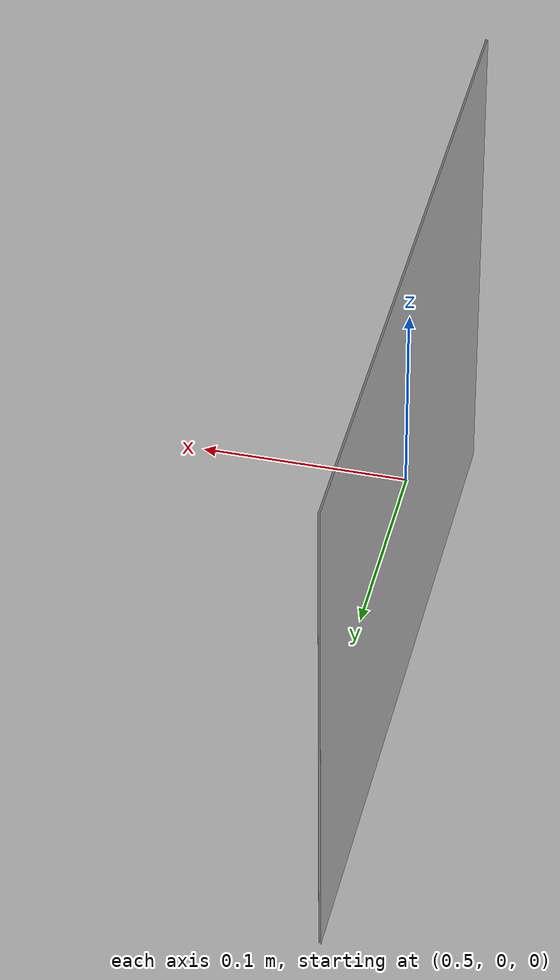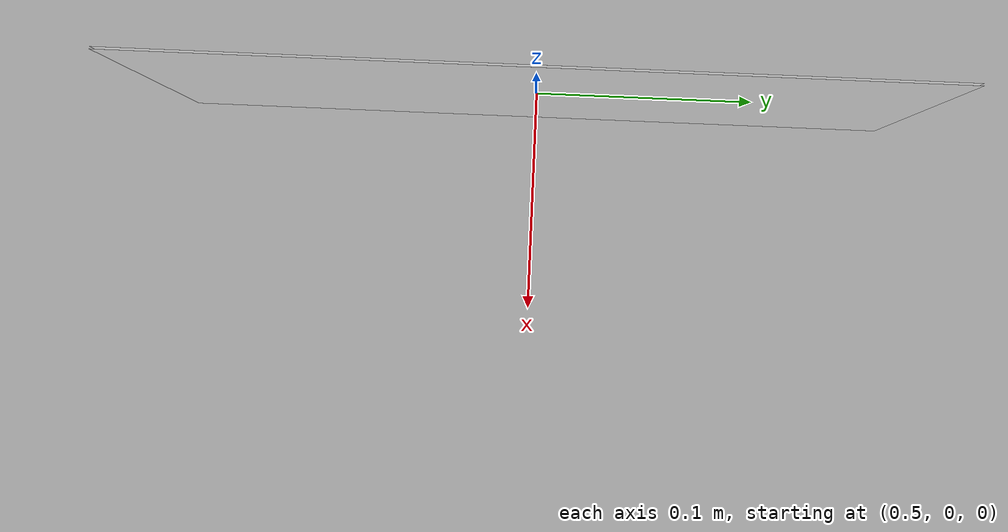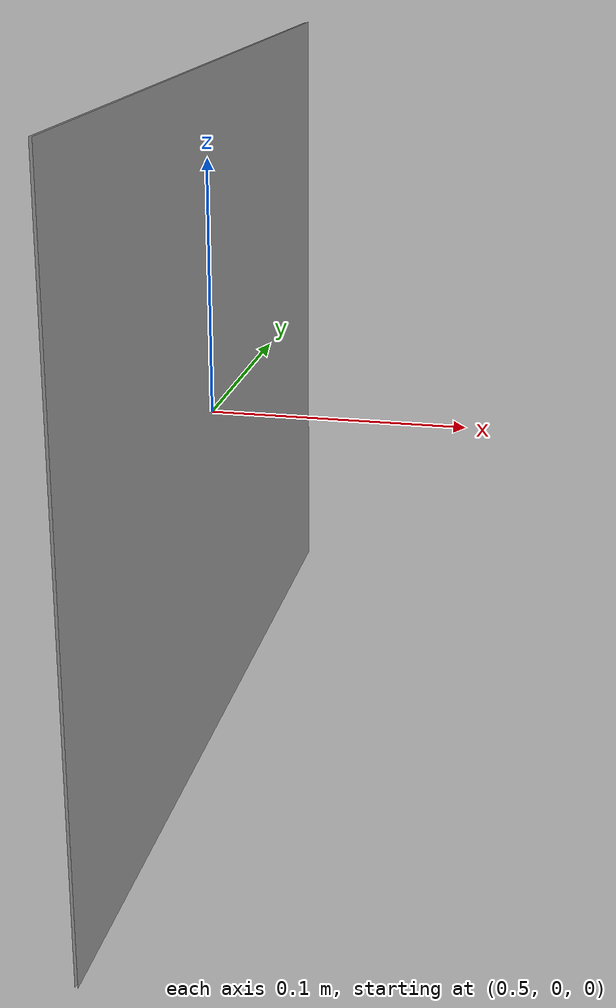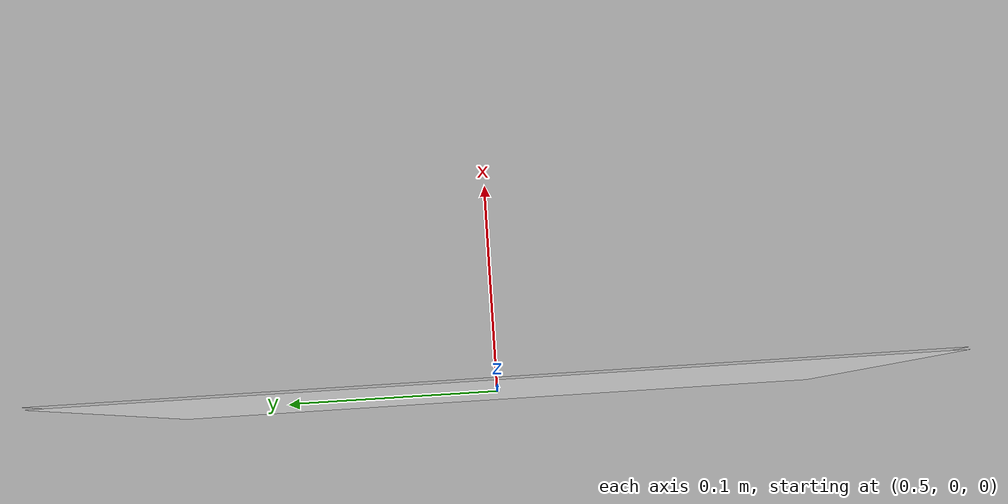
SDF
<?xml version="1.0"?>

<sdf version="1.6">
  <world name="default">

    <include>
      <uri>model://sun</uri>
    </include>

    <model name="charuco_12x9_aruco_5x5">
      <include>
        <static>true</static>
        <uri>model://charuco_12x9_aruco_5x5_target</uri>
      </include>
      <pose>0.5 0.0 0.0 0.0 -1.5707963267948966 0.0</pose>
    </model>
  </world>
</sdf>

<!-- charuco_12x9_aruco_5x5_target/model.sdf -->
<sdf version='1.5'>
  <model name='charuco_12x9_aruco_5x5_target'>

    <link name='marker'>
      <pose frame=''>0 0 0 0 0 0</pose>
      <visual name='visual'>
        <geometry>
          <box>
            <size> 0.2700  0.3600 1e-5</size>
          </box>
        </geometry>
        <material>
          <script>
            <uri>model://charuco_12x9_aruco_5x5_target/materials/scripts</uri>
            <uri>model://charuco_12x9_aruco_5x5_target/materials/textures</uri>
            <name>visual_charuco_12x9_aruco_5x5_target/Marker</name>
          </script>
          <ambient>1 1 1 1</ambient>
          <diffuse>1 1 1 1</diffuse>
          <specular>0 0 0 1</specular>
          <emissive>1 1 1 0</emissive>
          <shader type='vertex'>
            <normal_map>__default__</normal_map>
          </shader>
        </material>
        <pose frame=''>0 0 0 0 0 0</pose>
        <cast_shadows>1</cast_shadows>
        <transparency>0</transparency>
      </visual>
      <collision name='collision'>
        <laser_retro>0</laser_retro>
        <max_contacts>10</max_contacts>
        <pose frame=''>0 0 0 0 0 0</pose>
        <geometry>
          <box>
            <size> 0.2700  0.3600 1e-05</size>
          </box>
        </geometry>
      </collision>
    </link>

    <link name='marker_pad'>
      <pose frame='marker'>0 0 -1e-3 0 0 0</pose>
      <visual name='visual'>
        <geometry>
          <box>
            <size> 0.2700  0.3600 1e-5</size>
          </box>
        </geometry>
        <material>
          <lighting>1</lighting>
          <script>
            <uri>file://media/materials/scripts/gazebo.material</uri>
            <name>Gazebo/White</name>
          </script>
          <ambient>0.3 0.3 0.3 1</ambient>
          <diffuse>0.7 0.7 0.7 1</diffuse>
          <specular>0.01 0.01 0.01 1</specular>
          <emissive>1 1 1 0</emissive>
          <shader type='vertex'>
            <normal_map>__default__</normal_map>
          </shader>
        </material>
        <cast_shadows>1</cast_shadows>
        <transparency>0</transparency>
      </visual>
      <collision name='collision'>
        <laser_retro>0</laser_retro>
        <max_contacts>10</max_contacts>
        <pose frame=''>0 0 0 0 0 0</pose>
        <geometry>
          <box>
            <size> 0.2700  0.3600 1e-5</size>
          </box>
        </geometry>
      </collision>
    </link>

    <joint name='marker_JOINT_marker_pad' type='revolute'>
      <parent>marker</parent>
      <child>marker_pad</child>
      <pose frame=''>0 0 0 0 0 0</pose>
      <axis>
        <xyz>0 0 1</xyz>
        <limit>
          <upper>0</upper>
          <lower>0</lower>
        </limit>
      </axis>
    </joint>

    <static>1</static>
    <allow_auto_disable>1</allow_auto_disable>

  </model>
</sdf>
